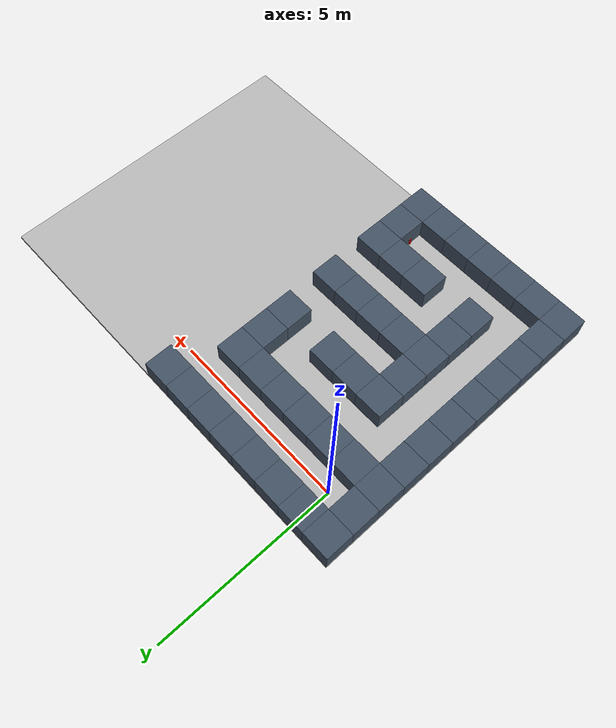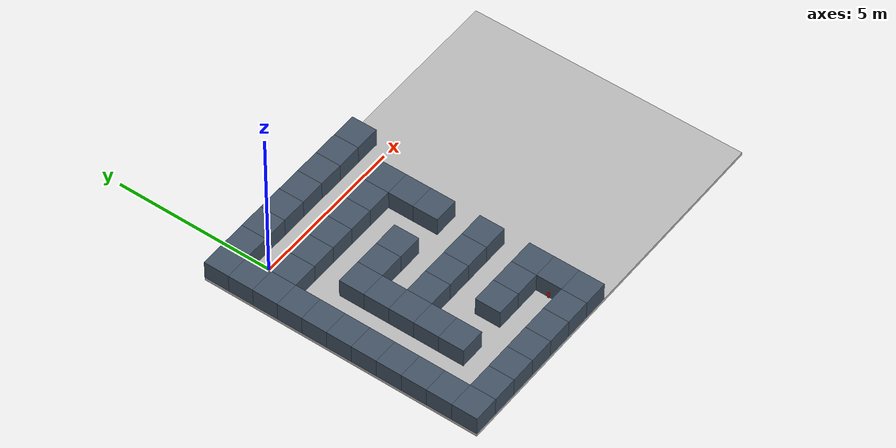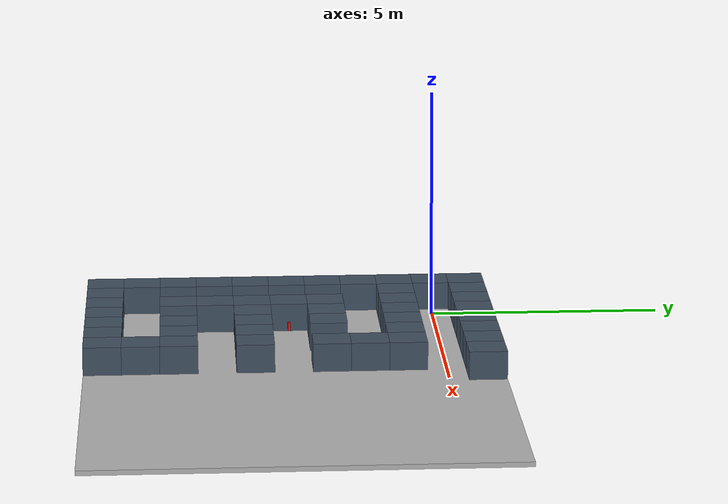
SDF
<sdf version="1.9">
 <world name="limo_maze">
  <model name="floor">
   <static>true</static>
   <pose>4.800000000000001 -3.2 -0.05 0 0 0</pose>
   <link name="body">
    <collision name="collision"><geometry><box><size>12.0 8.8 0.1</size></box></geometry></collision>
    <visual name="visual">
     <geometry><box><size>12.0 8.8 0.1</size></box></geometry>
     <material><ambient>0.72 0.72 0.72 1</ambient><diffuse>0.72 0.72 0.72 1</diffuse></material>
    </visual>
   </link>
  </model>
  <model name="wall_0_0">
   <static>true</static>
   <pose>-0.8 0.8 0.3 0 0 0</pose>
   <link name="body">
    <collision name="collision"><geometry><box><size>0.8 0.8 0.6</size></box></geometry></collision>
    <visual name="visual">
     <geometry><box><size>0.8 0.8 0.6</size></box></geometry>
     <material><ambient>0.26 0.32 0.39 1</ambient><diffuse>0.26 0.32 0.39 1</diffuse></material>
    </visual>
   </link>
  </model>
  <model name="wall_1_0">
   <static>true</static>
   <pose>0.0 0.8 0.3 0 0 0</pose>
   <link name="body">
    <collision name="collision"><geometry><box><size>0.8 0.8 0.6</size></box></geometry></collision>
    <visual name="visual">
     <geometry><box><size>0.8 0.8 0.6</size></box></geometry>
     <material><ambient>0.26 0.32 0.39 1</ambient><diffuse>0.26 0.32 0.39 1</diffuse></material>
    </visual>
   </link>
  </model>
  <model name="wall_2_0">
   <static>true</static>
   <pose>0.8 0.8 0.3 0 0 0</pose>
   <link name="body">
    <collision name="collision"><geometry><box><size>0.8 0.8 0.6</size></box></geometry></collision>
    <visual name="visual">
     <geometry><box><size>0.8 0.8 0.6</size></box></geometry>
     <material><ambient>0.26 0.32 0.39 1</ambient><diffuse>0.26 0.32 0.39 1</diffuse></material>
    </visual>
   </link>
  </model>
  <model name="wall_3_0">
   <static>true</static>
   <pose>1.6 0.8 0.3 0 0 0</pose>
   <link name="body">
    <collision name="collision"><geometry><box><size>0.8 0.8 0.6</size></box></geometry></collision>
    <visual name="visual">
     <geometry><box><size>0.8 0.8 0.6</size></box></geometry>
     <material><ambient>0.26 0.32 0.39 1</ambient><diffuse>0.26 0.32 0.39 1</diffuse></material>
    </visual>
   </link>
  </model>
  <model name="wall_4_0">
   <static>true</static>
   <pose>2.4000000000000004 0.8 0.3 0 0 0</pose>
   <link name="body">
    <collision name="collision"><geometry><box><size>0.8 0.8 0.6</size></box></geometry></collision>
    <visual name="visual">
     <geometry><box><size>0.8 0.8 0.6</size></box></geometry>
     <material><ambient>0.26 0.32 0.39 1</ambient><diffuse>0.26 0.32 0.39 1</diffuse></material>
    </visual>
   </link>
  </model>
  <model name="wall_5_0">
   <static>true</static>
   <pose>3.2 0.8 0.3 0 0 0</pose>
   <link name="body">
    <collision name="collision"><geometry><box><size>0.8 0.8 0.6</size></box></geometry></collision>
    <visual name="visual">
     <geometry><box><size>0.8 0.8 0.6</size></box></geometry>
     <material><ambient>0.26 0.32 0.39 1</ambient><diffuse>0.26 0.32 0.39 1</diffuse></material>
    </visual>
   </link>
  </model>
  <model name="wall_6_0">
   <static>true</static>
   <pose>4.0 0.8 0.3 0 0 0</pose>
   <link name="body">
    <collision name="collision"><geometry><box><size>0.8 0.8 0.6</size></box></geometry></collision>
    <visual name="visual">
     <geometry><box><size>0.8 0.8 0.6</size></box></geometry>
     <material><ambient>0.26 0.32 0.39 1</ambient><diffuse>0.26 0.32 0.39 1</diffuse></material>
    </visual>
   </link>
  </model>
  <model name="wall_7_0">
   <static>true</static>
   <pose>4.800000000000001 0.8 0.3 0 0 0</pose>
   <link name="body">
    <collision name="collision"><geometry><box><size>0.8 0.8 0.6</size></box></geometry></collision>
    <visual name="visual">
     <geometry><box><size>0.8 0.8 0.6</size></box></geometry>
     <material><ambient>0.26 0.32 0.39 1</ambient><diffuse>0.26 0.32 0.39 1</diffuse></material>
    </visual>
   </link>
  </model>
  <model name="wall_0_1">
   <static>true</static>
   <pose>-0.8 0.0 0.3 0 0 0</pose>
   <link name="body">
    <collision name="collision"><geometry><box><size>0.8 0.8 0.6</size></box></geometry></collision>
    <visual name="visual">
     <geometry><box><size>0.8 0.8 0.6</size></box></geometry>
     <material><ambient>0.26 0.32 0.39 1</ambient><diffuse>0.26 0.32 0.39 1</diffuse></material>
    </visual>
   </link>
  </model>
  <model name="wall_0_2">
   <static>true</static>
   <pose>-0.8 -0.8 0.3 0 0 0</pose>
   <link name="body">
    <collision name="collision"><geometry><box><size>0.8 0.8 0.6</size></box></geometry></collision>
    <visual name="visual">
     <geometry><box><size>0.8 0.8 0.6</size></box></geometry>
     <material><ambient>0.26 0.32 0.39 1</ambient><diffuse>0.26 0.32 0.39 1</diffuse></material>
    </visual>
   </link>
  </model>
  <model name="wall_1_2">
   <static>true</static>
   <pose>0.0 -0.8 0.3 0 0 0</pose>
   <link name="body">
    <collision name="collision"><geometry><box><size>0.8 0.8 0.6</size></box></geometry></collision>
    <visual name="visual">
     <geometry><box><size>0.8 0.8 0.6</size></box></geometry>
     <material><ambient>0.26 0.32 0.39 1</ambient><diffuse>0.26 0.32 0.39 1</diffuse></material>
    </visual>
   </link>
  </model>
  <model name="wall_2_2">
   <static>true</static>
   <pose>0.8 -0.8 0.3 0 0 0</pose>
   <link name="body">
    <collision name="collision"><geometry><box><size>0.8 0.8 0.6</size></box></geometry></collision>
    <visual name="visual">
     <geometry><box><size>0.8 0.8 0.6</size></box></geometry>
     <material><ambient>0.26 0.32 0.39 1</ambient><diffuse>0.26 0.32 0.39 1</diffuse></material>
    </visual>
   </link>
  </model>
  <model name="wall_3_2">
   <static>true</static>
   <pose>1.6 -0.8 0.3 0 0 0</pose>
   <link name="body">
    <collision name="collision"><geometry><box><size>0.8 0.8 0.6</size></box></geometry></collision>
    <visual name="visual">
     <geometry><box><size>0.8 0.8 0.6</size></box></geometry>
     <material><ambient>0.26 0.32 0.39 1</ambient><diffuse>0.26 0.32 0.39 1</diffuse></material>
    </visual>
   </link>
  </model>
  <model name="wall_4_2">
   <static>true</static>
   <pose>2.4000000000000004 -0.8 0.3 0 0 0</pose>
   <link name="body">
    <collision name="collision"><geometry><box><size>0.8 0.8 0.6</size></box></geometry></collision>
    <visual name="visual">
     <geometry><box><size>0.8 0.8 0.6</size></box></geometry>
     <material><ambient>0.26 0.32 0.39 1</ambient><diffuse>0.26 0.32 0.39 1</diffuse></material>
    </visual>
   </link>
  </model>
  <model name="wall_5_2">
   <static>true</static>
   <pose>3.2 -0.8 0.3 0 0 0</pose>
   <link name="body">
    <collision name="collision"><geometry><box><size>0.8 0.8 0.6</size></box></geometry></collision>
    <visual name="visual">
     <geometry><box><size>0.8 0.8 0.6</size></box></geometry>
     <material><ambient>0.26 0.32 0.39 1</ambient><diffuse>0.26 0.32 0.39 1</diffuse></material>
    </visual>
   </link>
  </model>
  <model name="wall_6_2">
   <static>true</static>
   <pose>4.0 -0.8 0.3 0 0 0</pose>
   <link name="body">
    <collision name="collision"><geometry><box><size>0.8 0.8 0.6</size></box></geometry></collision>
    <visual name="visual">
     <geometry><box><size>0.8 0.8 0.6</size></box></geometry>
     <material><ambient>0.26 0.32 0.39 1</ambient><diffuse>0.26 0.32 0.39 1</diffuse></material>
    </visual>
   </link>
  </model>
  <model name="wall_0_3">
   <static>true</static>
   <pose>-0.8 -1.6 0.3 0 0 0</pose>
   <link name="body">
    <collision name="collision"><geometry><box><size>0.8 0.8 0.6</size></box></geometry></collision>
    <visual name="visual">
     <geometry><box><size>0.8 0.8 0.6</size></box></geometry>
     <material><ambient>0.26 0.32 0.39 1</ambient><diffuse>0.26 0.32 0.39 1</diffuse></material>
    </visual>
   </link>
  </model>
  <model name="wall_6_3">
   <static>true</static>
   <pose>4.0 -1.6 0.3 0 0 0</pose>
   <link name="body">
    <collision name="collision"><geometry><box><size>0.8 0.8 0.6</size></box></geometry></collision>
    <visual name="visual">
     <geometry><box><size>0.8 0.8 0.6</size></box></geometry>
     <material><ambient>0.26 0.32 0.39 1</ambient><diffuse>0.26 0.32 0.39 1</diffuse></material>
    </visual>
   </link>
  </model>
  <model name="wall_0_4">
   <static>true</static>
   <pose>-0.8 -2.4000000000000004 0.3 0 0 0</pose>
   <link name="body">
    <collision name="collision"><geometry><box><size>0.8 0.8 0.6</size></box></geometry></collision>
    <visual name="visual">
     <geometry><box><size>0.8 0.8 0.6</size></box></geometry>
     <material><ambient>0.26 0.32 0.39 1</ambient><diffuse>0.26 0.32 0.39 1</diffuse></material>
    </visual>
   </link>
  </model>
  <model name="wall_2_4">
   <static>true</static>
   <pose>0.8 -2.4000000000000004 0.3 0 0 0</pose>
   <link name="body">
    <collision name="collision"><geometry><box><size>0.8 0.8 0.6</size></box></geometry></collision>
    <visual name="visual">
     <geometry><box><size>0.8 0.8 0.6</size></box></geometry>
     <material><ambient>0.26 0.32 0.39 1</ambient><diffuse>0.26 0.32 0.39 1</diffuse></material>
    </visual>
   </link>
  </model>
  <model name="wall_3_4">
   <static>true</static>
   <pose>1.6 -2.4000000000000004 0.3 0 0 0</pose>
   <link name="body">
    <collision name="collision"><geometry><box><size>0.8 0.8 0.6</size></box></geometry></collision>
    <visual name="visual">
     <geometry><box><size>0.8 0.8 0.6</size></box></geometry>
     <material><ambient>0.26 0.32 0.39 1</ambient><diffuse>0.26 0.32 0.39 1</diffuse></material>
    </visual>
   </link>
  </model>
  <model name="wall_4_4">
   <static>true</static>
   <pose>2.4000000000000004 -2.4000000000000004 0.3 0 0 0</pose>
   <link name="body">
    <collision name="collision"><geometry><box><size>0.8 0.8 0.6</size></box></geometry></collision>
    <visual name="visual">
     <geometry><box><size>0.8 0.8 0.6</size></box></geometry>
     <material><ambient>0.26 0.32 0.39 1</ambient><diffuse>0.26 0.32 0.39 1</diffuse></material>
    </visual>
   </link>
  </model>
  <model name="wall_6_4">
   <static>true</static>
   <pose>4.0 -2.4000000000000004 0.3 0 0 0</pose>
   <link name="body">
    <collision name="collision"><geometry><box><size>0.8 0.8 0.6</size></box></geometry></collision>
    <visual name="visual">
     <geometry><box><size>0.8 0.8 0.6</size></box></geometry>
     <material><ambient>0.26 0.32 0.39 1</ambient><diffuse>0.26 0.32 0.39 1</diffuse></material>
    </visual>
   </link>
  </model>
  <model name="wall_0_5">
   <static>true</static>
   <pose>-0.8 -3.2 0.3 0 0 0</pose>
   <link name="body">
    <collision name="collision"><geometry><box><size>0.8 0.8 0.6</size></box></geometry></collision>
    <visual name="visual">
     <geometry><box><size>0.8 0.8 0.6</size></box></geometry>
     <material><ambient>0.26 0.32 0.39 1</ambient><diffuse>0.26 0.32 0.39 1</diffuse></material>
    </visual>
   </link>
  </model>
  <model name="wall_2_5">
   <static>true</static>
   <pose>0.8 -3.2 0.3 0 0 0</pose>
   <link name="body">
    <collision name="collision"><geometry><box><size>0.8 0.8 0.6</size></box></geometry></collision>
    <visual name="visual">
     <geometry><box><size>0.8 0.8 0.6</size></box></geometry>
     <material><ambient>0.26 0.32 0.39 1</ambient><diffuse>0.26 0.32 0.39 1</diffuse></material>
    </visual>
   </link>
  </model>
  <model name="wall_0_6">
   <static>true</static>
   <pose>-0.8 -4.0 0.3 0 0 0</pose>
   <link name="body">
    <collision name="collision"><geometry><box><size>0.8 0.8 0.6</size></box></geometry></collision>
    <visual name="visual">
     <geometry><box><size>0.8 0.8 0.6</size></box></geometry>
     <material><ambient>0.26 0.32 0.39 1</ambient><diffuse>0.26 0.32 0.39 1</diffuse></material>
    </visual>
   </link>
  </model>
  <model name="wall_2_6">
   <static>true</static>
   <pose>0.8 -4.0 0.3 0 0 0</pose>
   <link name="body">
    <collision name="collision"><geometry><box><size>0.8 0.8 0.6</size></box></geometry></collision>
    <visual name="visual">
     <geometry><box><size>0.8 0.8 0.6</size></box></geometry>
     <material><ambient>0.26 0.32 0.39 1</ambient><diffuse>0.26 0.32 0.39 1</diffuse></material>
    </visual>
   </link>
  </model>
  <model name="wall_3_6">
   <static>true</static>
   <pose>1.6 -4.0 0.3 0 0 0</pose>
   <link name="body">
    <collision name="collision"><geometry><box><size>0.8 0.8 0.6</size></box></geometry></collision>
    <visual name="visual">
     <geometry><box><size>0.8 0.8 0.6</size></box></geometry>
     <material><ambient>0.26 0.32 0.39 1</ambient><diffuse>0.26 0.32 0.39 1</diffuse></material>
    </visual>
   </link>
  </model>
  <model name="wall_4_6">
   <static>true</static>
   <pose>2.4000000000000004 -4.0 0.3 0 0 0</pose>
   <link name="body">
    <collision name="collision"><geometry><box><size>0.8 0.8 0.6</size></box></geometry></collision>
    <visual name="visual">
     <geometry><box><size>0.8 0.8 0.6</size></box></geometry>
     <material><ambient>0.26 0.32 0.39 1</ambient><diffuse>0.26 0.32 0.39 1</diffuse></material>
    </visual>
   </link>
  </model>
  <model name="wall_5_6">
   <static>true</static>
   <pose>3.2 -4.0 0.3 0 0 0</pose>
   <link name="body">
    <collision name="collision"><geometry><box><size>0.8 0.8 0.6</size></box></geometry></collision>
    <visual name="visual">
     <geometry><box><size>0.8 0.8 0.6</size></box></geometry>
     <material><ambient>0.26 0.32 0.39 1</ambient><diffuse>0.26 0.32 0.39 1</diffuse></material>
    </visual>
   </link>
  </model>
  <model name="wall_6_6">
   <static>true</static>
   <pose>4.0 -4.0 0.3 0 0 0</pose>
   <link name="body">
    <collision name="collision"><geometry><box><size>0.8 0.8 0.6</size></box></geometry></collision>
    <visual name="visual">
     <geometry><box><size>0.8 0.8 0.6</size></box></geometry>
     <material><ambient>0.26 0.32 0.39 1</ambient><diffuse>0.26 0.32 0.39 1</diffuse></material>
    </visual>
   </link>
  </model>
  <model name="wall_0_7">
   <static>true</static>
   <pose>-0.8 -4.800000000000001 0.3 0 0 0</pose>
   <link name="body">
    <collision name="collision"><geometry><box><size>0.8 0.8 0.6</size></box></geometry></collision>
    <visual name="visual">
     <geometry><box><size>0.8 0.8 0.6</size></box></geometry>
     <material><ambient>0.26 0.32 0.39 1</ambient><diffuse>0.26 0.32 0.39 1</diffuse></material>
    </visual>
   </link>
  </model>
  <model name="wall_2_7">
   <static>true</static>
   <pose>0.8 -4.800000000000001 0.3 0 0 0</pose>
   <link name="body">
    <collision name="collision"><geometry><box><size>0.8 0.8 0.6</size></box></geometry></collision>
    <visual name="visual">
     <geometry><box><size>0.8 0.8 0.6</size></box></geometry>
     <material><ambient>0.26 0.32 0.39 1</ambient><diffuse>0.26 0.32 0.39 1</diffuse></material>
    </visual>
   </link>
  </model>
  <model name="wall_0_8">
   <static>true</static>
   <pose>-0.8 -5.6000000000000005 0.3 0 0 0</pose>
   <link name="body">
    <collision name="collision"><geometry><box><size>0.8 0.8 0.6</size></box></geometry></collision>
    <visual name="visual">
     <geometry><box><size>0.8 0.8 0.6</size></box></geometry>
     <material><ambient>0.26 0.32 0.39 1</ambient><diffuse>0.26 0.32 0.39 1</diffuse></material>
    </visual>
   </link>
  </model>
  <model name="wall_2_8">
   <static>true</static>
   <pose>0.8 -5.6000000000000005 0.3 0 0 0</pose>
   <link name="body">
    <collision name="collision"><geometry><box><size>0.8 0.8 0.6</size></box></geometry></collision>
    <visual name="visual">
     <geometry><box><size>0.8 0.8 0.6</size></box></geometry>
     <material><ambient>0.26 0.32 0.39 1</ambient><diffuse>0.26 0.32 0.39 1</diffuse></material>
    </visual>
   </link>
  </model>
  <model name="wall_4_8">
   <static>true</static>
   <pose>2.4000000000000004 -5.6000000000000005 0.3 0 0 0</pose>
   <link name="body">
    <collision name="collision"><geometry><box><size>0.8 0.8 0.6</size></box></geometry></collision>
    <visual name="visual">
     <geometry><box><size>0.8 0.8 0.6</size></box></geometry>
     <material><ambient>0.26 0.32 0.39 1</ambient><diffuse>0.26 0.32 0.39 1</diffuse></material>
    </visual>
   </link>
  </model>
  <model name="wall_5_8">
   <static>true</static>
   <pose>3.2 -5.6000000000000005 0.3 0 0 0</pose>
   <link name="body">
    <collision name="collision"><geometry><box><size>0.8 0.8 0.6</size></box></geometry></collision>
    <visual name="visual">
     <geometry><box><size>0.8 0.8 0.6</size></box></geometry>
     <material><ambient>0.26 0.32 0.39 1</ambient><diffuse>0.26 0.32 0.39 1</diffuse></material>
    </visual>
   </link>
  </model>
  <model name="wall_6_8">
   <static>true</static>
   <pose>4.0 -5.6000000000000005 0.3 0 0 0</pose>
   <link name="body">
    <collision name="collision"><geometry><box><size>0.8 0.8 0.6</size></box></geometry></collision>
    <visual name="visual">
     <geometry><box><size>0.8 0.8 0.6</size></box></geometry>
     <material><ambient>0.26 0.32 0.39 1</ambient><diffuse>0.26 0.32 0.39 1</diffuse></material>
    </visual>
   </link>
  </model>
  <model name="wall_0_9">
   <static>true</static>
   <pose>-0.8 -6.4 0.3 0 0 0</pose>
   <link name="body">
    <collision name="collision"><geometry><box><size>0.8 0.8 0.6</size></box></geometry></collision>
    <visual name="visual">
     <geometry><box><size>0.8 0.8 0.6</size></box></geometry>
     <material><ambient>0.26 0.32 0.39 1</ambient><diffuse>0.26 0.32 0.39 1</diffuse></material>
    </visual>
   </link>
  </model>
  <model name="wall_6_9">
   <static>true</static>
   <pose>4.0 -6.4 0.3 0 0 0</pose>
   <link name="body">
    <collision name="collision"><geometry><box><size>0.8 0.8 0.6</size></box></geometry></collision>
    <visual name="visual">
     <geometry><box><size>0.8 0.8 0.6</size></box></geometry>
     <material><ambient>0.26 0.32 0.39 1</ambient><diffuse>0.26 0.32 0.39 1</diffuse></material>
    </visual>
   </link>
  </model>
  <model name="wall_0_10">
   <static>true</static>
   <pose>-0.8 -7.2 0.3 0 0 0</pose>
   <link name="body">
    <collision name="collision"><geometry><box><size>0.8 0.8 0.6</size></box></geometry></collision>
    <visual name="visual">
     <geometry><box><size>0.8 0.8 0.6</size></box></geometry>
     <material><ambient>0.26 0.32 0.39 1</ambient><diffuse>0.26 0.32 0.39 1</diffuse></material>
    </visual>
   </link>
  </model>
  <model name="wall_1_10">
   <static>true</static>
   <pose>0.0 -7.2 0.3 0 0 0</pose>
   <link name="body">
    <collision name="collision"><geometry><box><size>0.8 0.8 0.6</size></box></geometry></collision>
    <visual name="visual">
     <geometry><box><size>0.8 0.8 0.6</size></box></geometry>
     <material><ambient>0.26 0.32 0.39 1</ambient><diffuse>0.26 0.32 0.39 1</diffuse></material>
    </visual>
   </link>
  </model>
  <model name="wall_2_10">
   <static>true</static>
   <pose>0.8 -7.2 0.3 0 0 0</pose>
   <link name="body">
    <collision name="collision"><geometry><box><size>0.8 0.8 0.6</size></box></geometry></collision>
    <visual name="visual">
     <geometry><box><size>0.8 0.8 0.6</size></box></geometry>
     <material><ambient>0.26 0.32 0.39 1</ambient><diffuse>0.26 0.32 0.39 1</diffuse></material>
    </visual>
   </link>
  </model>
  <model name="wall_3_10">
   <static>true</static>
   <pose>1.6 -7.2 0.3 0 0 0</pose>
   <link name="body">
    <collision name="collision"><geometry><box><size>0.8 0.8 0.6</size></box></geometry></collision>
    <visual name="visual">
     <geometry><box><size>0.8 0.8 0.6</size></box></geometry>
     <material><ambient>0.26 0.32 0.39 1</ambient><diffuse>0.26 0.32 0.39 1</diffuse></material>
    </visual>
   </link>
  </model>
  <model name="wall_4_10">
   <static>true</static>
   <pose>2.4000000000000004 -7.2 0.3 0 0 0</pose>
   <link name="body">
    <collision name="collision"><geometry><box><size>0.8 0.8 0.6</size></box></geometry></collision>
    <visual name="visual">
     <geometry><box><size>0.8 0.8 0.6</size></box></geometry>
     <material><ambient>0.26 0.32 0.39 1</ambient><diffuse>0.26 0.32 0.39 1</diffuse></material>
    </visual>
   </link>
  </model>
  <model name="wall_5_10">
   <static>true</static>
   <pose>3.2 -7.2 0.3 0 0 0</pose>
   <link name="body">
    <collision name="collision"><geometry><box><size>0.8 0.8 0.6</size></box></geometry></collision>
    <visual name="visual">
     <geometry><box><size>0.8 0.8 0.6</size></box></geometry>
     <material><ambient>0.26 0.32 0.39 1</ambient><diffuse>0.26 0.32 0.39 1</diffuse></material>
    </visual>
   </link>
  </model>
  <model name="wall_6_10">
   <static>true</static>
   <pose>4.0 -7.2 0.3 0 0 0</pose>
   <link name="body">
    <collision name="collision"><geometry><box><size>0.8 0.8 0.6</size></box></geometry></collision>
    <visual name="visual">
     <geometry><box><size>0.8 0.8 0.6</size></box></geometry>
     <material><ambient>0.26 0.32 0.39 1</ambient><diffuse>0.26 0.32 0.39 1</diffuse></material>
    </visual>
   </link>
  </model>
  <model name="target_surrogate_2">
   <static>true</static>
   <pose>1.215 -3.2 0.1 0 0 0</pose>
   <link name="body">
    <collision name="collision"><geometry><box><size>0.03 0.06 0.2</size></box></geometry></collision>
    <visual name="visual">
     <geometry><box><size>0.03 0.06 0.2</size></box></geometry>
     <material><ambient>0.9 0.05 0.05 1</ambient><diffuse>0.9 0.05 0.05 1</diffuse></material>
    </visual>
   </link>
  </model>
  <model name="target_surrogate_4">
   <static>true</static>
   <pose>3.585 -6.4 0.1 0 0 0</pose>
   <link name="body">
    <collision name="collision"><geometry><box><size>0.03 0.06 0.2</size></box></geometry></collision>
    <visual name="visual">
     <geometry><box><size>0.03 0.06 0.2</size></box></geometry>
     <material><ambient>0.9 0.05 0.05 1</ambient><diffuse>0.9 0.05 0.05 1</diffuse></material>
    </visual>
   </link>
  </model>
 </world>
</sdf>
